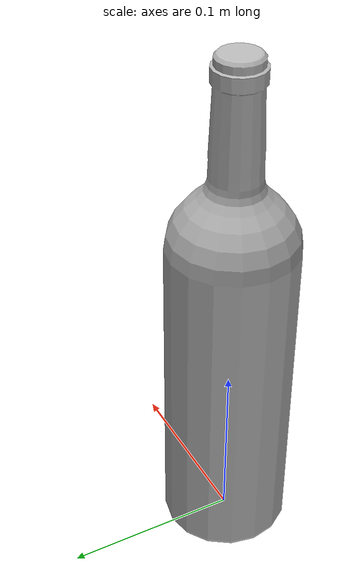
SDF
<?xml version="1.0" ?>
<sdf version="1.6" xmlns:drake="drake.mit.edu">
  <model name="wine_bottle">
    <link name="link_wine_bottle">
      <inertial>
        <pose frame="">0.0000e+00 0.0000e+00 1.1700e-01 0.0000e+00 0.0000e+00 0.0000e+00</pose>
        <mass>1.853</mass>
        <inertia>
          <ixx>0.012</ixx>
          <ixy>0</ixy>
          <ixz>0</ixz>
          <iyy>0.012</iyy>
          <iyz>0</iyz>
          <izz>0.002</izz>
        </inertia>
      </inertial>
      <visual name="link_wine_bottle">
        <pose frame="">0.0000e+00 0.0000e+00 0.0000e+00 0.0000e+00 0.0000e+00 0.0000e+00</pose>
        <geometry>
          <mesh>
            <uri>meshes/link_wine_bottle.obj</uri>
            <scale>1.0000e+00 1.0000e+00 1.0000e+00</scale>
          </mesh>
        </geometry>
        <material>
          <drake:diffuse_map>texture_maps/link_wine_bottle_Bake1_pbr_diffuse.png</drake:diffuse_map>
          <drake:normal_map>texture_maps/link_wine_bottle_Bake1_pbr_normal.png</drake:normal_map>
          <drake:roughness_map>texture_maps/link_wine_bottle_Bake1_pbr_roughness.png</drake:roughness_map>
          <drake:transparency_map>texture_maps/link_wine_bottle_Bake1_pbr_transparency.png</drake:transparency_map>
          <drake:alpha_map>texture_maps/link_wine_bottle_Bake1_pbr_alpha.png</drake:alpha_map>
        </material>
      </visual>
      <collision name="Cylinder">
        <pose frame="">0.0000e+00 0.0000e+00 0.0000e+00 0.0000e+00 0.0000e+00 0.0000e+00</pose>
        <geometry>
          <mesh>
            <uri>meshes/Cylinder.obj</uri>
            <scale>1.0000e+00 1.0000e+00 1.0000e+00</scale>
            <drake:declare_convex/>
          </mesh>
        </geometry>
      </collision>
      <collision name="Cylinder.001">
        <pose frame="">0.0000e+00 0.0000e+00 0.0000e+00 0.0000e+00 0.0000e+00 0.0000e+00</pose>
        <geometry>
          <mesh>
            <uri>meshes/Cylinder.001.obj</uri>
            <scale>1.0000e+00 1.0000e+00 1.0000e+00</scale>
            <drake:declare_convex/>
          </mesh>
        </geometry>
      </collision>
    </link>
  </model>
</sdf>
